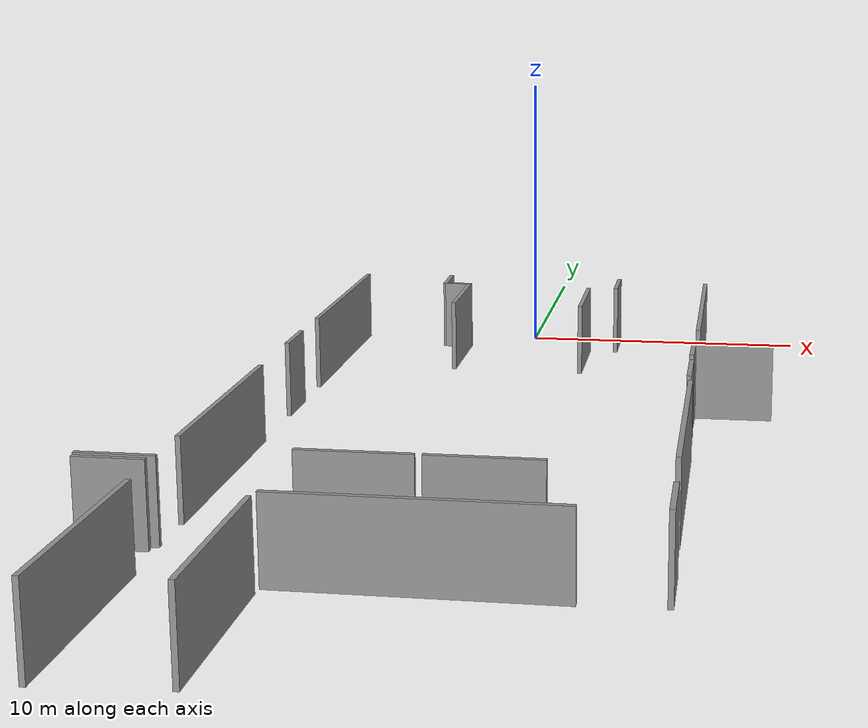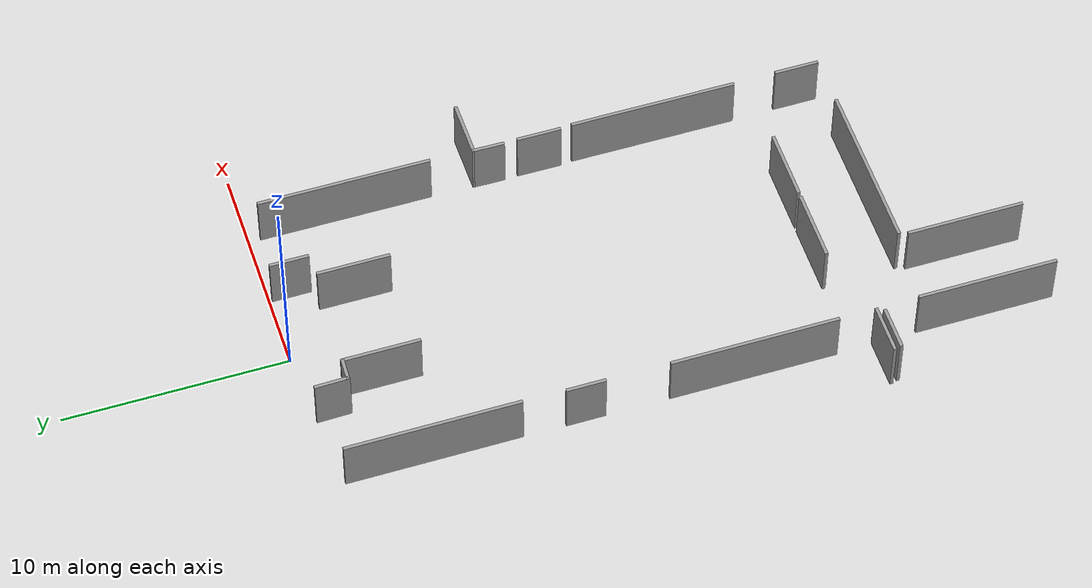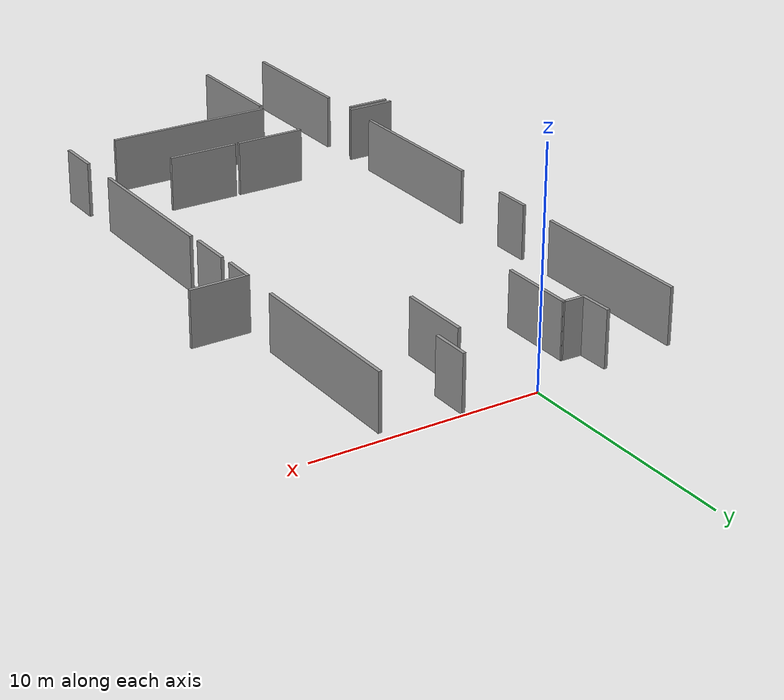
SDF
<?xml version='1.0'?>
<sdf version='1.7'>
  <model name='hospital_walls'>
    <pose>0.127263 -16.0039 0 0 -0 0</pose>
    <link name='Wall_10'>
      <collision name='Wall_10_Collision'>
        <geometry>
          <box>
            <size>1.46684 0.15 2.5</size>
          </box>
        </geometry>
        <pose>0 0 1.25 0 -0 0</pose>
      </collision>
      <visual name='Wall_10_Visual'>
        <pose>0 0 1.25 0 -0 0</pose>
        <geometry>
          <box>
            <size>1.46684 0.15 2.5</size>
          </box>
        </geometry>
        <material>
          <script>
            <uri>file://media/materials/scripts/gazebo.material</uri>
            <name>Gazebo/Grey</name>
          </script>
          <ambient>1 1 1 1</ambient>
        </material>
        <meta>
          <layer>0</layer>
        </meta>
      </visual>
      <pose>6.46836 5.11555 0 0 -0 -1.58343</pose>
    </link>
    <link name='Wall_12'>
      <collision name='Wall_12_Collision'>
        <geometry>
          <box>
            <size>2 0.15 2.5</size>
          </box>
        </geometry>
        <pose>0 0 1.25 0 -0 0</pose>
      </collision>
      <visual name='Wall_12_Visual'>
        <pose>0 0 1.25 0 -0 0</pose>
        <geometry>
          <box>
            <size>2 0.15 2.5</size>
          </box>
        </geometry>
        <material>
          <script>
            <uri>file://media/materials/scripts/gazebo.material</uri>
            <name>Gazebo/Grey</name>
          </script>
          <ambient>1 1 1 1</ambient>
        </material>
        <meta>
          <layer>0</layer>
        </meta>
      </visual>
      <pose>6.48153 2.80316 0 0 -0 -1.5708</pose>
    </link>
    <link name='Wall_14'>
      <collision name='Wall_14_Collision'>
        <geometry>
          <box>
            <size>7.5 0.15 2.5</size>
          </box>
        </geometry>
        <pose>0 0 1.25 0 -0 0</pose>
      </collision>
      <visual name='Wall_14_Visual'>
        <pose>0 0 1.25 0 -0 0</pose>
        <geometry>
          <box>
            <size>7.5 0.15 2.5</size>
          </box>
        </geometry>
        <material>
          <script>
            <uri>file://media/materials/scripts/gazebo.material</uri>
            <name>Gazebo/Grey</name>
          </script>
          <ambient>1 1 1 1</ambient>
        </material>
        <meta>
          <layer>0</layer>
        </meta>
      </visual>
      <pose>6.53974 -2.45831 0 0 -0 -1.5708</pose>
    </link>
    <link name='Wall_16'>
      <collision name='Wall_16_Collision'>
        <geometry>
          <box>
            <size>2 0.15 2.5</size>
          </box>
        </geometry>
        <pose>0 0 1.25 0 -0 0</pose>
      </collision>
      <visual name='Wall_16_Visual'>
        <pose>0 0 1.25 0 -0 0</pose>
        <geometry>
          <box>
            <size>2 0.15 2.5</size>
          </box>
        </geometry>
        <material>
          <script>
            <uri>file://media/materials/scripts/gazebo.material</uri>
            <name>Gazebo/Grey</name>
          </script>
          <ambient>1 1 1 1</ambient>
        </material>
        <meta>
          <layer>0</layer>
        </meta>
      </visual>
      <pose>6.58132 -9.13045 0 0 -0 -1.5708</pose>
    </link>
    <link name='Wall_20'>
      <collision name='Wall_20_Collision'>
        <geometry>
          <box>
            <size>7.75 0.15 2.5</size>
          </box>
        </geometry>
        <pose>0 0 1.25 0 -0 0</pose>
      </collision>
      <visual name='Wall_20_Visual'>
        <pose>0 0 1.25 0 -0 0</pose>
        <geometry>
          <box>
            <size>7.75 0.15 2.5</size>
          </box>
        </geometry>
        <material>
          <script>
            <uri>file://media/materials/scripts/gazebo.material</uri>
            <name>Gazebo/Grey</name>
          </script>
          <ambient>1 1 1 1</ambient>
        </material>
        <meta>
          <layer>0</layer>
        </meta>
      </visual>
      <pose>0.460726 -10.1514 0 0 -0 0</pose>
    </link>
    <link name='Wall_22'>
      <collision name='Wall_22_Collision'>
        <geometry>
          <box>
            <size>5.25 0.15 2.5</size>
          </box>
        </geometry>
        <pose>0 0 1.25 0 -0 0</pose>
      </collision>
      <visual name='Wall_22_Visual'>
        <pose>0 0 1.25 0 -0 0</pose>
        <geometry>
          <box>
            <size>5.25 0.15 2.5</size>
          </box>
        </geometry>
        <material>
          <script>
            <uri>file://media/materials/scripts/gazebo.material</uri>
            <name>Gazebo/Grey</name>
          </script>
          <ambient>1 1 1 1</ambient>
        </material>
        <meta>
          <layer>0</layer>
        </meta>
      </visual>
      <pose>-3.49809 -13.1499 0 0 -0 -1.5708</pose>
    </link>
    <link name='Wall_24'>
      <collision name='Wall_24_Collision'>
        <geometry>
          <box>
            <size>6.25 0.15 2.5</size>
          </box>
        </geometry>
        <pose>0 0 1.25 0 -0 0</pose>
      </collision>
      <visual name='Wall_24_Visual'>
        <pose>0 0 1.25 0 -0 0</pose>
        <geometry>
          <box>
            <size>6.25 0.15 2.5</size>
          </box>
        </geometry>
        <material>
          <script>
            <uri>file://media/materials/scripts/gazebo.material</uri>
            <name>Gazebo/Grey</name>
          </script>
          <ambient>1 1 1 1</ambient>
        </material>
        <meta>
          <layer>0</layer>
        </meta>
      </visual>
      <pose>-6.80075 -12.8789 0 0 -0 -1.5708</pose>
    </link>
    <link name='Wall_26'>
      <collision name='Wall_26_Collision'>
        <geometry>
          <box>
            <size>2 0.15 2.5</size>
          </box>
        </geometry>
        <pose>0 0 1.25 0 -0 0</pose>
      </collision>
      <visual name='Wall_26_Visual'>
        <pose>0 0 1.25 0 -0 0</pose>
        <geometry>
          <box>
            <size>2 0.15 2.5</size>
          </box>
        </geometry>
        <material>
          <script>
            <uri>file://media/materials/scripts/gazebo.material</uri>
            <name>Gazebo/Grey</name>
          </script>
          <ambient>1 1 1 1</ambient>
        </material>
        <meta>
          <layer>0</layer>
        </meta>
      </visual>
      <pose>-7.97545 -8.14475 0 0 -0 0</pose>
    </link>
    <link name='Wall_28'>
      <collision name='Wall_28_Collision'>
        <geometry>
          <box>
            <size>2.25 0.15 2.5</size>
          </box>
        </geometry>
        <pose>0 0 1.25 0 -0 0</pose>
      </collision>
      <visual name='Wall_28_Visual'>
        <pose>0 0 1.25 0 -0 0</pose>
        <geometry>
          <box>
            <size>2.25 0.15 2.5</size>
          </box>
        </geometry>
        <material>
          <script>
            <uri>file://media/materials/scripts/gazebo.material</uri>
            <name>Gazebo/Grey</name>
          </script>
          <ambient>1 1 1 1</ambient>
        </material>
        <meta>
          <layer>0</layer>
        </meta>
      </visual>
      <pose>-7.927 -7.8276 0 0 -0 0</pose>
    </link>
    <link name='Wall_30'>
      <collision name='Wall_30_Collision'>
        <geometry>
          <box>
            <size>7.5 0.15 2.5</size>
          </box>
        </geometry>
        <pose>0 0 1.25 0 -0 0</pose>
      </collision>
      <visual name='Wall_30_Visual'>
        <pose>0 0 1.25 0 -0 0</pose>
        <geometry>
          <box>
            <size>7.5 0.15 2.5</size>
          </box>
        </geometry>
        <material>
          <script>
            <uri>file://media/materials/scripts/gazebo.material</uri>
            <name>Gazebo/Grey</name>
          </script>
          <ambient>1 1 1 1</ambient>
        </material>
        <meta>
          <layer>0</layer>
        </meta>
      </visual>
      <pose>-6.83989 -2.42349 0 0 -0 1.5708</pose>
    </link>
    <link name='Wall_32'>
      <collision name='Wall_32_Collision'>
        <geometry>
          <box>
            <size>1.75 0.15 2.5</size>
          </box>
        </geometry>
        <pose>0 0 1.25 0 -0 0</pose>
      </collision>
      <visual name='Wall_32_Visual'>
        <pose>0 0 1.25 0 -0 0</pose>
        <geometry>
          <box>
            <size>1.75 0.15 2.5</size>
          </box>
        </geometry>
        <material>
          <script>
            <uri>file://media/materials/scripts/gazebo.material</uri>
            <name>Gazebo/Grey</name>
          </script>
          <ambient>1 1 1 1</ambient>
        </material>
        <meta>
          <layer>0</layer>
        </meta>
      </visual>
      <pose>-6.82325 5.02784 0 0 -0 -1.5708</pose>
    </link>
    <link name='Wall_34'>
      <collision name='Wall_34_Collision'>
        <geometry>
          <box>
            <size>7.75 0.15 2.5</size>
          </box>
        </geometry>
        <pose>0 0 1.25 0 -0 0</pose>
      </collision>
      <visual name='Wall_34_Visual'>
        <pose>0 0 1.25 0 -0 0</pose>
        <geometry>
          <box>
            <size>7.75 0.15 2.5</size>
          </box>
        </geometry>
        <material>
          <script>
            <uri>file://media/materials/scripts/gazebo.material</uri>
            <name>Gazebo/Grey</name>
          </script>
          <ambient>1 1 1 1</ambient>
        </material>
        <meta>
          <layer>0</layer>
        </meta>
      </visual>
      <pose>-6.78999 11.6496 0 0 -0 -1.5708</pose>
    </link>
    <link name='Wall_38'>
      <collision name='Wall_38_Collision'>
        <geometry>
          <box>
            <size>3.5 0.15 2.5</size>
          </box>
        </geometry>
        <pose>0 0 1.25 0 -0 0</pose>
      </collision>
      <visual name='Wall_38_Visual'>
        <pose>0 0 1.25 0 -0 0</pose>
        <geometry>
          <box>
            <size>3.5 0.15 2.5</size>
          </box>
        </geometry>
        <material>
          <script>
            <uri>file://media/materials/scripts/gazebo.material</uri>
            <name>Gazebo/Grey</name>
          </script>
          <ambient>1 1 1 1</ambient>
        </material>
        <meta>
          <layer>0</layer>
        </meta>
      </visual>
      <pose>-2.49056 12.627 0 0 -0 -1.5708</pose>
    </link>
    <link name='Wall_41'>
      <collision name='Wall_41_Collision'>
        <geometry>
          <box>
            <size>1.0835 0.15 2.5</size>
          </box>
        </geometry>
        <pose>0 0 1.25 0 -0 0</pose>
      </collision>
      <visual name='Wall_41_Visual'>
        <pose>0 0 1.25 0 -0 0</pose>
        <geometry>
          <box>
            <size>1.0835 0.15 2.5</size>
          </box>
        </geometry>
        <material>
          <script>
            <uri>file://media/materials/scripts/gazebo.material</uri>
            <name>Gazebo/Grey</name>
          </script>
          <ambient>1 1 1 1</ambient>
        </material>
        <meta>
          <layer>0</layer>
        </meta>
      </visual>
      <pose>-2.95714 14.3144 0 0 -0 3.11486</pose>
    </link>
    <link name='Wall_42'>
      <collision name='Wall_42_Collision'>
        <geometry>
          <box>
            <size>1.54746 0.15 2.5</size>
          </box>
        </geometry>
        <pose>0 0 1.25 0 -0 0</pose>
      </collision>
      <visual name='Wall_42_Visual'>
        <pose>0 0 1.25 0 -0 0</pose>
        <geometry>
          <box>
            <size>1.54746 0.15 2.5</size>
          </box>
        </geometry>
        <material>
          <script>
            <uri>file://media/materials/scripts/gazebo.material</uri>
            <name>Gazebo/Grey</name>
          </script>
          <ambient>1 1 1 1</ambient>
        </material>
        <meta>
          <layer>0</layer>
        </meta>
      </visual>
      <pose>-3.44779 15.0255 0 0 -0 1.59334</pose>
    </link>
    <link name='Wall_44'>
      <collision name='Wall_44_Collision'>
        <geometry>
          <box>
            <size>1.75 0.15 2.5</size>
          </box>
        </geometry>
        <pose>0 0 1.25 0 -0 0</pose>
      </collision>
      <visual name='Wall_44_Visual'>
        <pose>0 0 1.25 0 -0 0</pose>
        <geometry>
          <box>
            <size>1.75 0.15 2.5</size>
          </box>
        </geometry>
        <material>
          <script>
            <uri>file://media/materials/scripts/gazebo.material</uri>
            <name>Gazebo/Grey</name>
          </script>
          <ambient>1 1 1 1</ambient>
        </material>
        <meta>
          <layer>0</layer>
        </meta>
      </visual>
      <pose>3.18934 15.0072 0 0 -0 -1.5708</pose>
    </link>
    <link name='Wall_46'>
      <collision name='Wall_46_Collision'>
        <geometry>
          <box>
            <size>3.25 0.15 2.5</size>
          </box>
        </geometry>
        <pose>0 0 1.25 0 -0 0</pose>
      </collision>
      <visual name='Wall_46_Visual'>
        <pose>0 0 1.25 0 -0 0</pose>
        <geometry>
          <box>
            <size>3.25 0.15 2.5</size>
          </box>
        </geometry>
        <material>
          <script>
            <uri>file://media/materials/scripts/gazebo.material</uri>
            <name>Gazebo/Grey</name>
          </script>
          <ambient>1 1 1 1</ambient>
        </material>
        <meta>
          <layer>0</layer>
        </meta>
      </visual>
      <pose>2.16646 12.4526 0 0 -0 -1.5708</pose>
    </link>
    <link name='Wall_50'>
      <collision name='Wall_50_Collision'>
        <geometry>
          <box>
            <size>3.25 0.15 2.5</size>
          </box>
        </geometry>
        <pose>0 0 1.25 0 -0 0</pose>
      </collision>
      <visual name='Wall_50_Visual'>
        <pose>0 0 1.25 0 -0 0</pose>
        <geometry>
          <box>
            <size>3.25 0.15 2.5</size>
          </box>
        </geometry>
        <material>
          <script>
            <uri>file://media/materials/scripts/gazebo.material</uri>
            <name>Gazebo/Grey</name>
          </script>
          <ambient>1 1 1 1</ambient>
        </material>
        <meta>
          <layer>0</layer>
        </meta>
      </visual>
      <pose>1.58776 -6.83537 0 0 -0 0</pose>
    </link>
    <link name='Wall_52'>
      <collision name='Wall_52_Collision'>
        <geometry>
          <box>
            <size>3.25 0.15 2.5</size>
          </box>
        </geometry>
        <pose>0 0 1.25 0 -0 0</pose>
      </collision>
      <visual name='Wall_52_Visual'>
        <pose>0 0 1.25 0 -0 0</pose>
        <geometry>
          <box>
            <size>3.25 0.15 2.5</size>
          </box>
        </geometry>
        <material>
          <script>
            <uri>file://media/materials/scripts/gazebo.material</uri>
            <name>Gazebo/Grey</name>
          </script>
          <ambient>1 1 1 1</ambient>
        </material>
        <meta>
          <layer>0</layer>
        </meta>
      </visual>
      <pose>-1.85439 -6.83537 0 0 -0 0</pose>
    </link>
    <link name='Wall_7'>
      <collision name='Wall_7_Collision'>
        <geometry>
          <box>
            <size>7.75 0.15 2.5</size>
          </box>
        </geometry>
        <pose>0 0 1.25 0 -0 0</pose>
      </collision>
      <visual name='Wall_7_Visual'>
        <pose>0 0 1.25 0 -0 0</pose>
        <geometry>
          <box>
            <size>7.75 0.15 2.5</size>
          </box>
        </geometry>
        <material>
          <script>
            <uri>file://media/materials/scripts/gazebo.material</uri>
            <name>Gazebo/Grey</name>
          </script>
          <ambient>1 1 1 1</ambient>
        </material>
        <meta>
          <layer>0</layer>
        </meta>
      </visual>
      <pose>6.54586 11.5979 0 0 -0 -1.5708</pose>
    </link>
    <link name='Wall_9'>
      <collision name='Wall_9_Collision'>
        <geometry>
          <box>
            <size>2.65004 0.15 2.5</size>
          </box>
        </geometry>
        <pose>0 0 1.25 0 -0 0</pose>
      </collision>
      <visual name='Wall_9_Visual'>
        <pose>0 0 1.25 0 -0 0</pose>
        <geometry>
          <box>
            <size>2.65004 0.15 2.5</size>
          </box>
        </geometry>
        <material>
          <script>
            <uri>file://media/materials/scripts/gazebo.material</uri>
            <name>Gazebo/Grey</name>
          </script>
          <ambient>1 1 1 1</ambient>
        </material>
        <meta>
          <layer>0</layer>
        </meta>
      </visual>
      <pose>7.72652 5.79055 0 0 -0 -3.13494</pose>
    </link>
    <static>1</static>
  </model>
</sdf>
